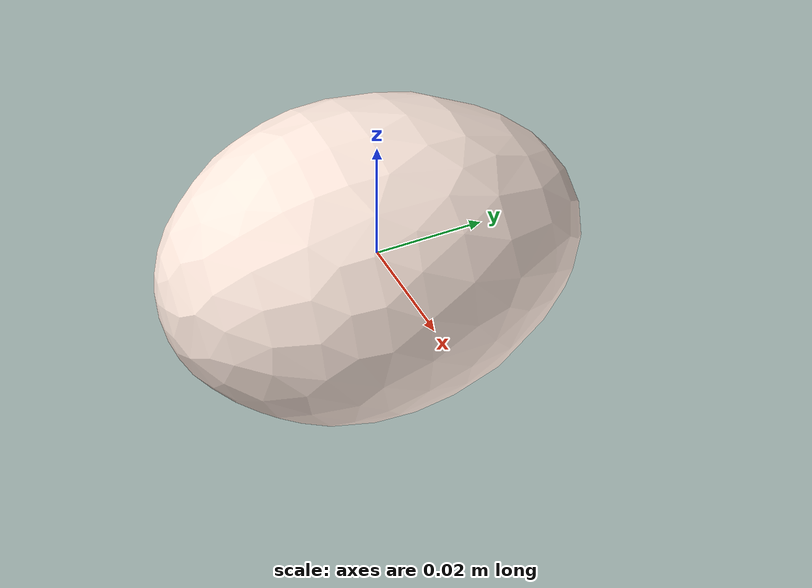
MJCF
<mujoco model="Egg_23">
  <compiler autolimits="true" boundmass="0.01" angle="radian"/>
  <default>
    <default class="/">
      <default class="__VISUAL_MJT__">
        <geom contype="0" conaffinity="0" group="0"/>
      </default>
      <default class="__STRUCTURAL_MJT__">
        <geom contype="8" conaffinity="15" group="4" friction="0.90000000000000002 0.90000000000000002 0.001" solref="0.025000000000000001 1" solimp="0.998 0.998 0.001"/>
      </default>
      <default class="__DYNAMIC_MJT__">
        <geom contype="1" conaffinity="15" group="4" friction="0.90000000000000002 0.90000000000000002 0.001" solref="0.025000000000000001 1" solimp="0.998 0.998 0.001"/>
      </default>
    </default>
  </default>
  <asset>
    <material name="material_Egg5_Mat" class="/" specular="0.5" shininess="0.5" rgba="1 0.91935489999999997 0.875 1"/>
    <mesh name="Egg_23_egg_23" class="/" file="Egg_23_egg_23/Egg_23_egg_23.obj" scale="1 1 1"/>
  </asset>
  <worldbody>
    <body name="Egg_23">
      <joint name="Egg_23_free" class="/" type="free" pos="0 0 0" axis="0 0 1" stiffness="0" range="0 0" armature="0" damping="0.10000000000000001" frictionloss="0"/>
      <body name="Egg_23_egg_23" pos="-0 0 -9.0000000000000006e-05" quat="1 0 0 0">
        <geom name="Egg_23_egg_23" class="__VISUAL_MJT__" type="mesh" material="material_Egg5_Mat" shellinertia="true" mesh="Egg_23_egg_23"/>
        <geom name="Egg_23_PrimitiveCollider_0" class="__DYNAMIC_MJT__" type="capsule" size="0.024891743436455727 0.0099723245948553085" rgba="0 1 0 1" pos="-0 0 0" quat="0.70710678118654757 0.70710678118654746 0 0"/>
      </body>
    </body>
  </worldbody>
</mujoco>
